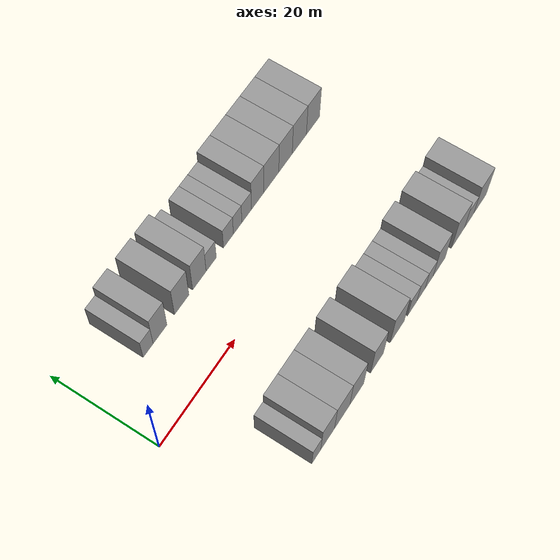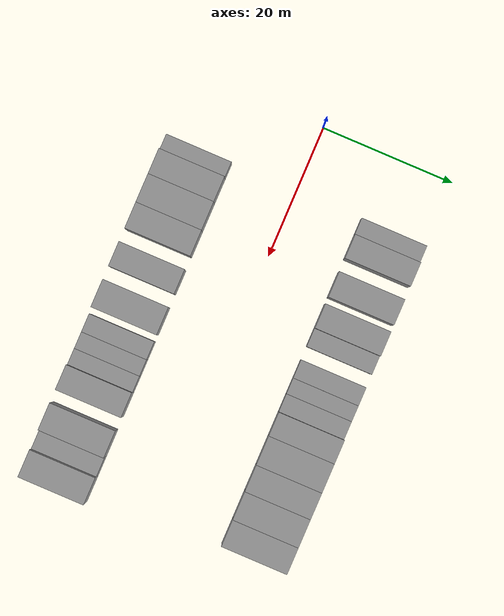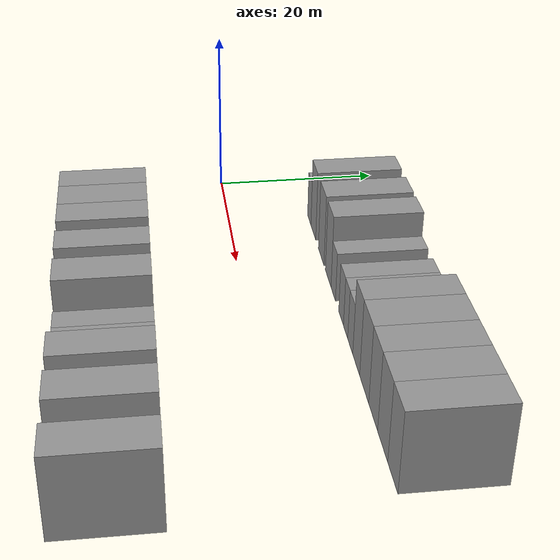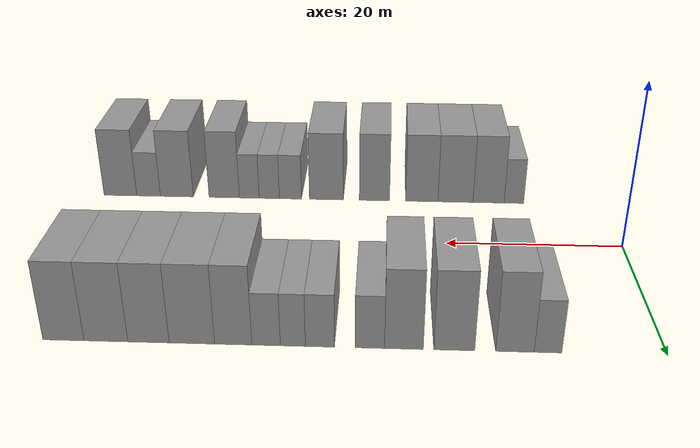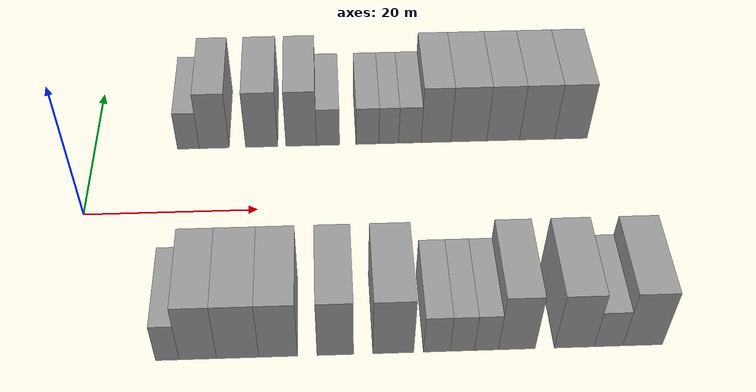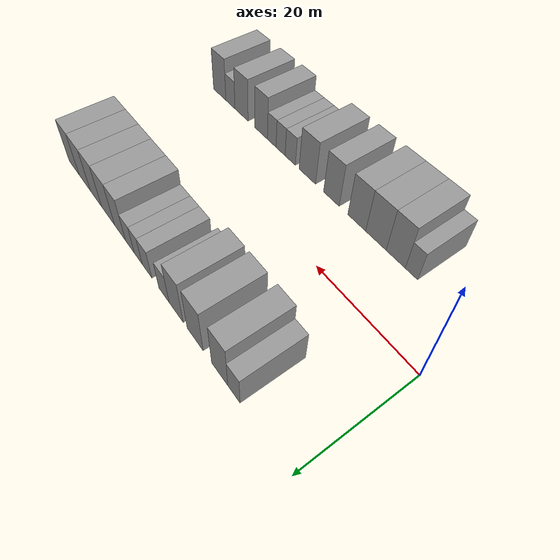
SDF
<sdf version="1.6">
 <world name="default">
  <model name="building_1">
   <static>1</static>
   <pose>11.3128 15.0000 0 0.000000 0.000000 1.570796</pose>
   <link name="link">
    <pose>0 0 3.00 0 0 0</pose>
    <collision name="collision"><geometry><box><size>10.0000 2.6256 6.0000</size></box></geometry></collision>
    <visual name="visual">
     <cast_shadows>0</cast_shadows>
     <geometry><box><size>10.0000 2.6256 6.0000</size></box></geometry>
     <material>
      <script>
       <uri>model://grey_wall/materials/scripts</uri>
       <uri>model://grey_wall/materials/textures</uri>
       <name>vrc/grey_wall</name>
      </script>
     </material>
    </visual>
   </link>
  </model>
  <model name="building_2">
   <static>1</static>
   <pose>14.4493 15.0000 0 0.000000 0.000000 1.570796</pose>
   <link name="link">
    <pose>0 0 4.50 0 0 0</pose>
    <collision name="collision"><geometry><box><size>10.0000 3.6474 9.0000</size></box></geometry></collision>
    <visual name="visual">
     <cast_shadows>0</cast_shadows>
     <geometry><box><size>10.0000 3.6474 9.0000</size></box></geometry>
     <material>
      <script>
       <uri>model://grey_wall/materials/scripts</uri>
       <uri>model://grey_wall/materials/textures</uri>
       <name>vrc/grey_wall</name>
      </script>
     </material>
    </visual>
   </link>
  </model>
  <model name="building_3">
   <static>1</static>
   <pose>20.2281 15.0000 0 0.000000 0.000000 1.570796</pose>
   <link name="link">
    <pose>0 0 4.50 0 0 0</pose>
    <collision name="collision"><geometry><box><size>10.0000 3.9103 9.0000</size></box></geometry></collision>
    <visual name="visual">
     <cast_shadows>0</cast_shadows>
     <geometry><box><size>10.0000 3.9103 9.0000</size></box></geometry>
     <material>
      <script>
       <uri>model://grey_wall/materials/scripts</uri>
       <uri>model://grey_wall/materials/textures</uri>
       <name>vrc/grey_wall</name>
      </script>
     </material>
    </visual>
   </link>
  </model>
  <model name="building_4">
   <static>1</static>
   <pose>25.0439 15.0000 0 0.000000 0.000000 1.570796</pose>
   <link name="link">
    <pose>0 0 4.50 0 0 0</pose>
    <collision name="collision"><geometry><box><size>10.0000 3.7213 9.0000</size></box></geometry></collision>
    <visual name="visual">
     <cast_shadows>0</cast_shadows>
     <geometry><box><size>10.0000 3.7213 9.0000</size></box></geometry>
     <material>
      <script>
       <uri>model://grey_wall/materials/scripts</uri>
       <uri>model://grey_wall/materials/textures</uri>
       <name>vrc/grey_wall</name>
      </script>
     </material>
    </visual>
   </link>
  </model>
  <model name="building_5">
   <static>1</static>
   <pose>28.3138 15.0000 0 0.000000 0.000000 1.570796</pose>
   <link name="link">
    <pose>0 0 3.00 0 0 0</pose>
    <collision name="collision"><geometry><box><size>10.0000 2.8185 6.0000</size></box></geometry></collision>
    <visual name="visual">
     <cast_shadows>0</cast_shadows>
     <geometry><box><size>10.0000 2.8185 6.0000</size></box></geometry>
     <material>
      <script>
       <uri>model://grey_wall/materials/scripts</uri>
       <uri>model://grey_wall/materials/textures</uri>
       <name>vrc/grey_wall</name>
      </script>
     </material>
    </visual>
   </link>
  </model>
  <model name="building_6">
   <static>1</static>
   <pose>33.1258 15.0000 0 0.000000 0.000000 1.570796</pose>
   <link name="link">
    <pose>0 0 3.00 0 0 0</pose>
    <collision name="collision"><geometry><box><size>10.0000 2.8056 6.0000</size></box></geometry></collision>
    <visual name="visual">
     <cast_shadows>0</cast_shadows>
     <geometry><box><size>10.0000 2.8056 6.0000</size></box></geometry>
     <material>
      <script>
       <uri>model://grey_wall/materials/scripts</uri>
       <uri>model://grey_wall/materials/textures</uri>
       <name>vrc/grey_wall</name>
      </script>
     </material>
    </visual>
   </link>
  </model>
  <model name="building_7">
   <static>1</static>
   <pose>35.7378 15.0000 0 0.000000 0.000000 1.570796</pose>
   <link name="link">
    <pose>0 0 3.00 0 0 0</pose>
    <collision name="collision"><geometry><box><size>10.0000 2.4183 6.0000</size></box></geometry></collision>
    <visual name="visual">
     <cast_shadows>0</cast_shadows>
     <geometry><box><size>10.0000 2.4183 6.0000</size></box></geometry>
     <material>
      <script>
       <uri>model://grey_wall/materials/scripts</uri>
       <uri>model://grey_wall/materials/textures</uri>
       <name>vrc/grey_wall</name>
      </script>
     </material>
    </visual>
   </link>
  </model>
  <model name="building_8">
   <static>1</static>
   <pose>38.3267 15.0000 0 0.000000 0.000000 1.570796</pose>
   <link name="link">
    <pose>0 0 3.00 0 0 0</pose>
    <collision name="collision"><geometry><box><size>10.0000 2.7596 6.0000</size></box></geometry></collision>
    <visual name="visual">
     <cast_shadows>0</cast_shadows>
     <geometry><box><size>10.0000 2.7596 6.0000</size></box></geometry>
     <material>
      <script>
       <uri>model://grey_wall/materials/scripts</uri>
       <uri>model://grey_wall/materials/textures</uri>
       <name>vrc/grey_wall</name>
      </script>
     </material>
    </visual>
   </link>
  </model>
  <model name="building_9">
   <static>1</static>
   <pose>41.5138 15.0000 0 0.000000 0.000000 1.570796</pose>
   <link name="link">
    <pose>0 0 4.50 0 0 0</pose>
    <collision name="collision"><geometry><box><size>10.0000 3.6146 9.0000</size></box></geometry></collision>
    <visual name="visual">
     <cast_shadows>0</cast_shadows>
     <geometry><box><size>10.0000 3.6146 9.0000</size></box></geometry>
     <material>
      <script>
       <uri>model://grey_wall/materials/scripts</uri>
       <uri>model://grey_wall/materials/textures</uri>
       <name>vrc/grey_wall</name>
      </script>
     </material>
    </visual>
   </link>
  </model>
  <model name="building_10">
   <static>1</static>
   <pose>45.5383 15.0000 0 0.000000 0.000000 1.570796</pose>
   <link name="link">
    <pose>0 0 4.50 0 0 0</pose>
    <collision name="collision"><geometry><box><size>10.0000 4.4344 9.0000</size></box></geometry></collision>
    <visual name="visual">
     <cast_shadows>0</cast_shadows>
     <geometry><box><size>10.0000 4.4344 9.0000</size></box></geometry>
     <material>
      <script>
       <uri>model://grey_wall/materials/scripts</uri>
       <uri>model://grey_wall/materials/textures</uri>
       <name>vrc/grey_wall</name>
      </script>
     </material>
    </visual>
   </link>
  </model>
  <model name="building_11">
   <static>1</static>
   <pose>49.7776 15.0000 0 0.000000 0.000000 1.570796</pose>
   <link name="link">
    <pose>0 0 4.50 0 0 0</pose>
    <collision name="collision"><geometry><box><size>10.0000 4.0441 9.0000</size></box></geometry></collision>
    <visual name="visual">
     <cast_shadows>0</cast_shadows>
     <geometry><box><size>10.0000 4.0441 9.0000</size></box></geometry>
     <material>
      <script>
       <uri>model://grey_wall/materials/scripts</uri>
       <uri>model://grey_wall/materials/textures</uri>
       <name>vrc/grey_wall</name>
      </script>
     </material>
    </visual>
   </link>
  </model>
  <model name="building_12">
   <static>1</static>
   <pose>53.9528 15.0000 0 0.000000 0.000000 1.570796</pose>
   <link name="link">
    <pose>0 0 4.50 0 0 0</pose>
    <collision name="collision"><geometry><box><size>10.0000 4.3062 9.0000</size></box></geometry></collision>
    <visual name="visual">
     <cast_shadows>0</cast_shadows>
     <geometry><box><size>10.0000 4.3062 9.0000</size></box></geometry>
     <material>
      <script>
       <uri>model://grey_wall/materials/scripts</uri>
       <uri>model://grey_wall/materials/textures</uri>
       <name>vrc/grey_wall</name>
      </script>
     </material>
    </visual>
   </link>
  </model>
  <model name="building_13">
   <static>1</static>
   <pose>58.1287 15.0000 0 0.000000 0.000000 1.570796</pose>
   <link name="link">
    <pose>0 0 4.50 0 0 0</pose>
    <collision name="collision"><geometry><box><size>10.0000 4.0456 9.0000</size></box></geometry></collision>
    <visual name="visual">
     <cast_shadows>0</cast_shadows>
     <geometry><box><size>10.0000 4.0456 9.0000</size></box></geometry>
     <material>
      <script>
       <uri>model://grey_wall/materials/scripts</uri>
       <uri>model://grey_wall/materials/textures</uri>
       <name>vrc/grey_wall</name>
      </script>
     </material>
    </visual>
   </link>
  </model>
  <model name="building_55">
   <static>1</static>
   <pose>11.2029 -15.0000 0 0.000000 0.000000 1.570796</pose>
   <link name="link">
    <pose>0 0 3.00 0 0 0</pose>
    <collision name="collision"><geometry><box><size>10.0000 2.4059 6.0000</size></box></geometry></collision>
    <visual name="visual">
     <cast_shadows>0</cast_shadows>
     <geometry><box><size>10.0000 2.4059 6.0000</size></box></geometry>
     <material>
      <script>
       <uri>model://grey_wall/materials/scripts</uri>
       <uri>model://grey_wall/materials/textures</uri>
       <name>vrc/grey_wall</name>
      </script>
     </material>
    </visual>
   </link>
  </model>
  <model name="building_56">
   <static>1</static>
   <pose>14.3253 -15.0000 0 0.000000 0.000000 1.570796</pose>
   <link name="link">
    <pose>0 0 4.50 0 0 0</pose>
    <collision name="collision"><geometry><box><size>10.0000 3.8389 9.0000</size></box></geometry></collision>
    <visual name="visual">
     <cast_shadows>0</cast_shadows>
     <geometry><box><size>10.0000 3.8389 9.0000</size></box></geometry>
     <material>
      <script>
       <uri>model://grey_wall/materials/scripts</uri>
       <uri>model://grey_wall/materials/textures</uri>
       <name>vrc/grey_wall</name>
      </script>
     </material>
    </visual>
   </link>
  </model>
  <model name="building_57">
   <static>1</static>
   <pose>18.4108 -15.0000 0 0.000000 0.000000 1.570796</pose>
   <link name="link">
    <pose>0 0 4.50 0 0 0</pose>
    <collision name="collision"><geometry><box><size>10.0000 4.3321 9.0000</size></box></geometry></collision>
    <visual name="visual">
     <cast_shadows>0</cast_shadows>
     <geometry><box><size>10.0000 4.3321 9.0000</size></box></geometry>
     <material>
      <script>
       <uri>model://grey_wall/materials/scripts</uri>
       <uri>model://grey_wall/materials/textures</uri>
       <name>vrc/grey_wall</name>
      </script>
     </material>
    </visual>
   </link>
  </model>
  <model name="building_58">
   <static>1</static>
   <pose>22.5724 -15.0000 0 0.000000 0.000000 1.570796</pose>
   <link name="link">
    <pose>0 0 4.50 0 0 0</pose>
    <collision name="collision"><geometry><box><size>10.0000 3.9911 9.0000</size></box></geometry></collision>
    <visual name="visual">
     <cast_shadows>0</cast_shadows>
     <geometry><box><size>10.0000 3.9911 9.0000</size></box></geometry>
     <material>
      <script>
       <uri>model://grey_wall/materials/scripts</uri>
       <uri>model://grey_wall/materials/textures</uri>
       <name>vrc/grey_wall</name>
      </script>
     </material>
    </visual>
   </link>
  </model>
  <model name="building_59">
   <static>1</static>
   <pose>28.4453 -15.0000 0 0.000000 0.000000 1.570796</pose>
   <link name="link">
    <pose>0 0 4.50 0 0 0</pose>
    <collision name="collision"><geometry><box><size>10.0000 3.7548 9.0000</size></box></geometry></collision>
    <visual name="visual">
     <cast_shadows>0</cast_shadows>
     <geometry><box><size>10.0000 3.7548 9.0000</size></box></geometry>
     <material>
      <script>
       <uri>model://grey_wall/materials/scripts</uri>
       <uri>model://grey_wall/materials/textures</uri>
       <name>vrc/grey_wall</name>
      </script>
     </material>
    </visual>
   </link>
  </model>
  <model name="building_60">
   <static>1</static>
   <pose>34.4378 -15.0000 0 0.000000 0.000000 1.570796</pose>
   <link name="link">
    <pose>0 0 4.50 0 0 0</pose>
    <collision name="collision"><geometry><box><size>10.0000 4.2302 9.0000</size></box></geometry></collision>
    <visual name="visual">
     <cast_shadows>0</cast_shadows>
     <geometry><box><size>10.0000 4.2302 9.0000</size></box></geometry>
     <material>
      <script>
       <uri>model://grey_wall/materials/scripts</uri>
       <uri>model://grey_wall/materials/textures</uri>
       <name>vrc/grey_wall</name>
      </script>
     </material>
    </visual>
   </link>
  </model>
  <model name="building_61">
   <static>1</static>
   <pose>38.9397 -15.0000 0 0.000000 0.000000 1.570796</pose>
   <link name="link">
    <pose>0 0 3.00 0 0 0</pose>
    <collision name="collision"><geometry><box><size>10.0000 2.7736 6.0000</size></box></geometry></collision>
    <visual name="visual">
     <cast_shadows>0</cast_shadows>
     <geometry><box><size>10.0000 2.7736 6.0000</size></box></geometry>
     <material>
      <script>
       <uri>model://grey_wall/materials/scripts</uri>
       <uri>model://grey_wall/materials/textures</uri>
       <name>vrc/grey_wall</name>
      </script>
     </material>
    </visual>
   </link>
  </model>
  <model name="building_62">
   <static>1</static>
   <pose>41.5900 -15.0000 0 0.000000 0.000000 1.570796</pose>
   <link name="link">
    <pose>0 0 3.00 0 0 0</pose>
    <collision name="collision"><geometry><box><size>10.0000 2.5271 6.0000</size></box></geometry></collision>
    <visual name="visual">
     <cast_shadows>0</cast_shadows>
     <geometry><box><size>10.0000 2.5271 6.0000</size></box></geometry>
     <material>
      <script>
       <uri>model://grey_wall/materials/scripts</uri>
       <uri>model://grey_wall/materials/textures</uri>
       <name>vrc/grey_wall</name>
      </script>
     </material>
    </visual>
   </link>
  </model>
  <model name="building_63">
   <static>1</static>
   <pose>44.0959 -15.0000 0 0.000000 0.000000 1.570796</pose>
   <link name="link">
    <pose>0 0 3.00 0 0 0</pose>
    <collision name="collision"><geometry><box><size>10.0000 2.4846 6.0000</size></box></geometry></collision>
    <visual name="visual">
     <cast_shadows>0</cast_shadows>
     <geometry><box><size>10.0000 2.4846 6.0000</size></box></geometry>
     <material>
      <script>
       <uri>model://grey_wall/materials/scripts</uri>
       <uri>model://grey_wall/materials/textures</uri>
       <name>vrc/grey_wall</name>
      </script>
     </material>
    </visual>
   </link>
  </model>
  <model name="building_64">
   <static>1</static>
   <pose>47.2443 -15.0000 0 0.000000 0.000000 1.570796</pose>
   <link name="link">
    <pose>0 0 4.50 0 0 0</pose>
    <collision name="collision"><geometry><box><size>10.0000 3.8123 9.0000</size></box></geometry></collision>
    <visual name="visual">
     <cast_shadows>0</cast_shadows>
     <geometry><box><size>10.0000 3.8123 9.0000</size></box></geometry>
     <material>
      <script>
       <uri>model://grey_wall/materials/scripts</uri>
       <uri>model://grey_wall/materials/textures</uri>
       <name>vrc/grey_wall</name>
      </script>
     </material>
    </visual>
   </link>
  </model>
  <model name="building_65">
   <static>1</static>
   <pose>53.2227 -15.0000 0 0.000000 0.000000 1.570796</pose>
   <link name="link">
    <pose>0 0 4.50 0 0 0</pose>
    <collision name="collision"><geometry><box><size>10.0000 4.1446 9.0000</size></box></geometry></collision>
    <visual name="visual">
     <cast_shadows>0</cast_shadows>
     <geometry><box><size>10.0000 4.1446 9.0000</size></box></geometry>
     <material>
      <script>
       <uri>model://grey_wall/materials/scripts</uri>
       <uri>model://grey_wall/materials/textures</uri>
       <name>vrc/grey_wall</name>
      </script>
     </material>
    </visual>
   </link>
  </model>
  <model name="building_66">
   <static>1</static>
   <pose>56.7872 -15.0000 0 0.000000 0.000000 1.570796</pose>
   <link name="link">
    <pose>0 0 3.00 0 0 0</pose>
    <collision name="collision"><geometry><box><size>10.0000 2.9842 6.0000</size></box></geometry></collision>
    <visual name="visual">
     <cast_shadows>0</cast_shadows>
     <geometry><box><size>10.0000 2.9842 6.0000</size></box></geometry>
     <material>
      <script>
       <uri>model://grey_wall/materials/scripts</uri>
       <uri>model://grey_wall/materials/textures</uri>
       <name>vrc/grey_wall</name>
      </script>
     </material>
    </visual>
   </link>
  </model>
  <model name="building_67">
   <static>1</static>
   <pose>60.3565 -15.0000 0 0.000000 0.000000 1.570796</pose>
   <link name="link">
    <pose>0 0 4.50 0 0 0</pose>
    <collision name="collision"><geometry><box><size>10.0000 4.1545 9.0000</size></box></geometry></collision>
    <visual name="visual">
     <cast_shadows>0</cast_shadows>
     <geometry><box><size>10.0000 4.1545 9.0000</size></box></geometry>
     <material>
      <script>
       <uri>model://grey_wall/materials/scripts</uri>
       <uri>model://grey_wall/materials/textures</uri>
       <name>vrc/grey_wall</name>
      </script>
     </material>
    </visual>
   </link>
  </model>
 </world>
</sdf>
